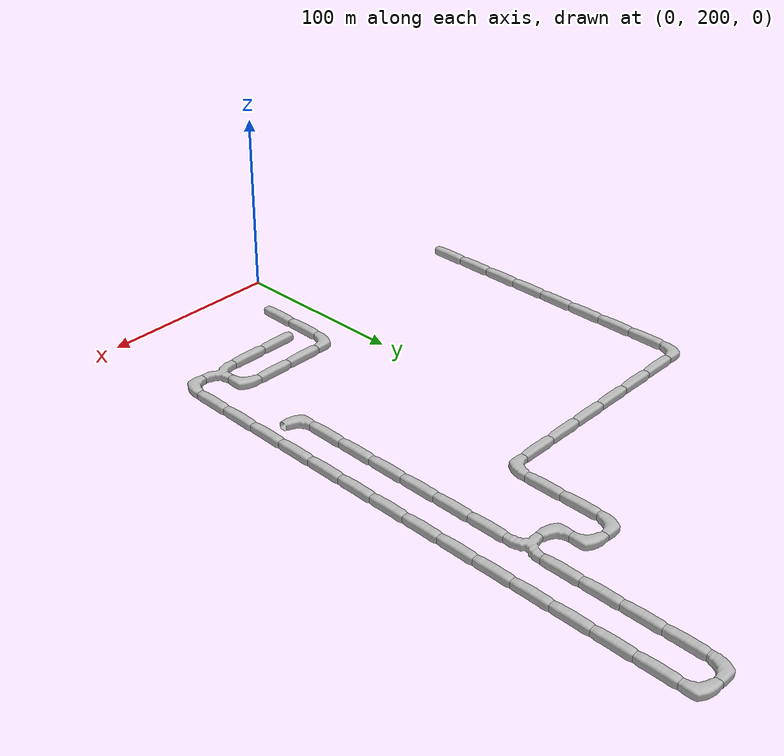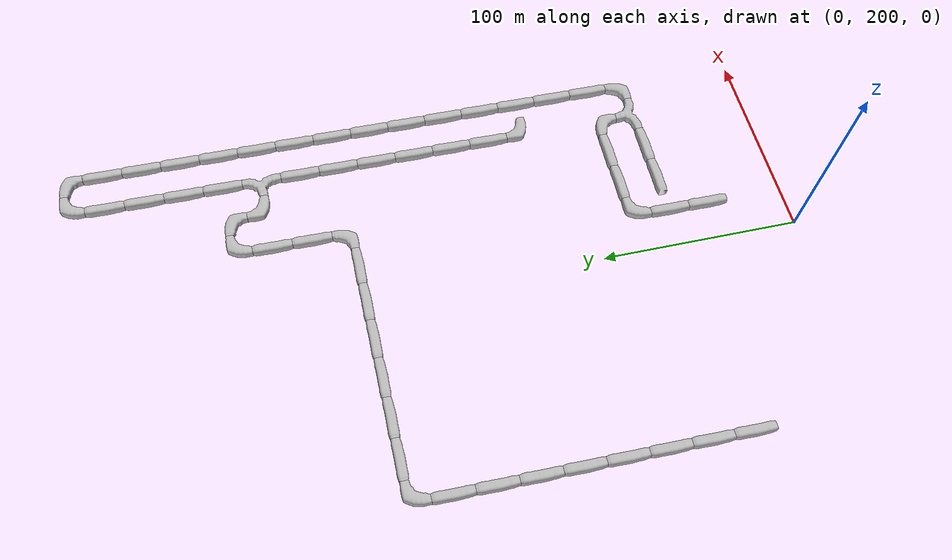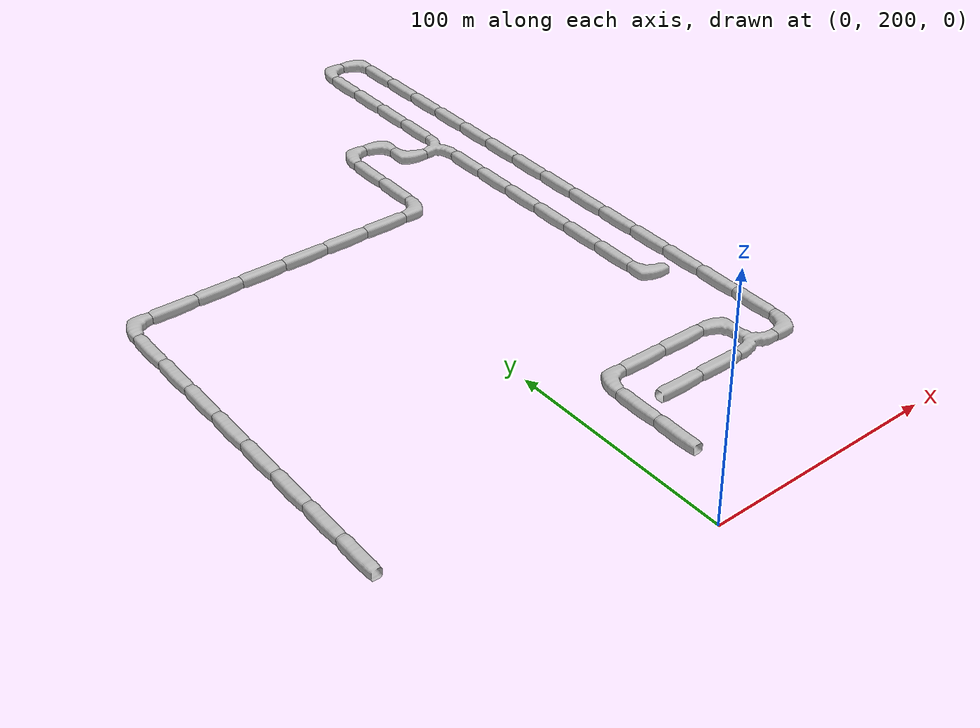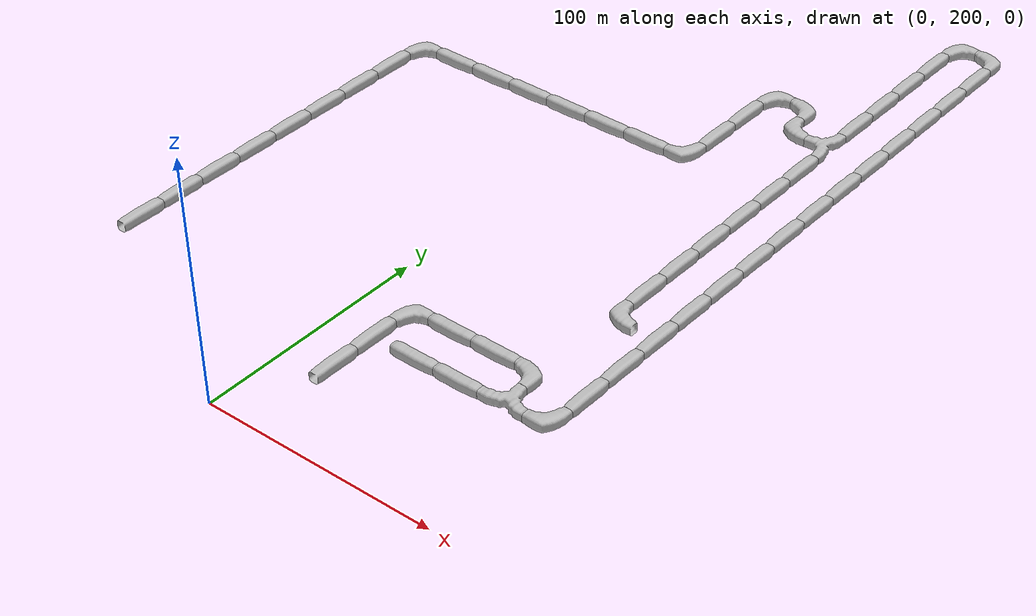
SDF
<sdf version="1.6">
 <world name="cave_32000_32">
  <include>
   <static>true</static>
   <name>cave_1_12</name>
   <pose>20 240 0 0 0 0.0</pose>
   <uri>model://cave_straight_20m</uri>
  </include>
  <include>
   <static>true</static>
   <name>cave_1_13</name>
   <pose>20 260 0 0 0 0.0</pose>
   <uri>model://cave_straight_20m</uri>
  </include>
  <include>
   <static>true</static>
   <name>cave_1_14</name>
   <pose>20 280 0 0 0 -1.5707963267948966</pose>
   <uri>model://cave_L_20m</uri>
  </include>
  <include>
   <static>true</static>
   <name>cave_2_14</name>
   <pose>40 280 0 0 0 1.5707963267948966</pose>
   <uri>model://cave_straight_20m</uri>
  </include>
  <include>
   <static>true</static>
   <name>cave_3_14</name>
   <pose>60 280 0 0 0 1.5707963267948966</pose>
   <uri>model://cave_straight_20m</uri>
  </include>
  <include>
   <static>true</static>
   <name>cave_4_14</name>
   <pose>80 280 0 0 0 3.141592653589793</pose>
   <uri>model://cave_L_20m</uri>
  </include>
  <include>
   <static>true</static>
   <name>cave_4_13</name>
   <pose>80 260 0 0 0 0.0</pose>
   <uri>model://cave_3way_20m</uri>
  </include>
  <include>
   <static>true</static>
   <name>cave_5_13</name>
   <pose>100 260 0 0 0 1.5707963267948966</pose>
   <uri>model://cave_L_20m</uri>
  </include>
  <include>
   <static>true</static>
   <name>cave_5_14</name>
   <pose>100 280 0 0 0 0.0</pose>
   <uri>model://cave_straight_20m</uri>
  </include>
  <include>
   <static>true</static>
   <name>cave_5_15</name>
   <pose>100 300 0 0 0 0.0</pose>
   <uri>model://cave_straight_20m</uri>
  </include>
  <include>
   <static>true</static>
   <name>cave_5_16</name>
   <pose>100 320 0 0 0 0.0</pose>
   <uri>model://cave_straight_20m</uri>
  </include>
  <include>
   <static>true</static>
   <name>cave_5_17</name>
   <pose>100 340 0 0 0 0.0</pose>
   <uri>model://cave_straight_20m</uri>
  </include>
  <include>
   <static>true</static>
   <name>cave_5_18</name>
   <pose>100 360 0 0 0 0.0</pose>
   <uri>model://cave_straight_20m</uri>
  </include>
  <include>
   <static>true</static>
   <name>cave_5_19</name>
   <pose>100 380 0 0 0 0.0</pose>
   <uri>model://cave_straight_20m</uri>
  </include>
  <include>
   <static>true</static>
   <name>cave_5_20</name>
   <pose>100 400 0 0 0 0.0</pose>
   <uri>model://cave_straight_20m</uri>
  </include>
  <include>
   <static>true</static>
   <name>cave_5_21</name>
   <pose>100 420 0 0 0 0.0</pose>
   <uri>model://cave_straight_20m</uri>
  </include>
  <include>
   <static>true</static>
   <name>cave_5_22</name>
   <pose>100 440 0 0 0 0.0</pose>
   <uri>model://cave_straight_20m</uri>
  </include>
  <include>
   <static>true</static>
   <name>cave_5_23</name>
   <pose>100 460 0 0 0 0.0</pose>
   <uri>model://cave_straight_20m</uri>
  </include>
  <include>
   <static>true</static>
   <name>cave_5_24</name>
   <pose>100 480 0 0 0 0.0</pose>
   <uri>model://cave_straight_20m</uri>
  </include>
  <include>
   <static>true</static>
   <name>cave_5_25</name>
   <pose>100 500 0 0 0 0.0</pose>
   <uri>model://cave_straight_20m</uri>
  </include>
  <include>
   <static>true</static>
   <name>cave_5_26</name>
   <pose>100 520 0 0 0 0.0</pose>
   <uri>model://cave_straight_20m</uri>
  </include>
  <include>
   <static>true</static>
   <name>cave_5_27</name>
   <pose>100 540 0 0 0 0.0</pose>
   <uri>model://cave_straight_20m</uri>
  </include>
  <include>
   <static>true</static>
   <name>cave_5_28</name>
   <pose>100 560 0 0 0 3.141592653589793</pose>
   <uri>model://cave_L_20m</uri>
  </include>
  <include>
   <static>true</static>
   <name>cave_4_28</name>
   <pose>80 560 0 0 0 -1.5707963267948966</pose>
   <uri>model://cave_L_20m</uri>
  </include>
  <include>
   <static>true</static>
   <name>cave_4_27</name>
   <pose>80 540 0 0 0 0.0</pose>
   <uri>model://cave_straight_20m</uri>
  </include>
  <include>
   <static>true</static>
   <name>cave_4_26</name>
   <pose>80 520 0 0 0 0.0</pose>
   <uri>model://cave_straight_20m</uri>
  </include>
  <include>
   <static>true</static>
   <name>cave_4_25</name>
   <pose>80 500 0 0 0 0.0</pose>
   <uri>model://cave_straight_20m</uri>
  </include>
  <include>
   <static>true</static>
   <name>cave_4_24</name>
   <pose>80 480 0 0 0 0.0</pose>
   <uri>model://cave_straight_20m</uri>
  </include>
  <include>
   <static>true</static>
   <name>cave_4_23</name>
   <pose>80 460 0 0 0 1.5707963267948966</pose>
   <uri>model://cave_3way_20m</uri>
  </include>
  <include>
   <static>true</static>
   <name>cave_4_22</name>
   <pose>80 440 0 0 0 0.0</pose>
   <uri>model://cave_straight_20m</uri>
  </include>
  <include>
   <static>true</static>
   <name>cave_4_21</name>
   <pose>80 420 0 0 0 0.0</pose>
   <uri>model://cave_straight_20m</uri>
  </include>
  <include>
   <static>true</static>
   <name>cave_4_20</name>
   <pose>80 400 0 0 0 0.0</pose>
   <uri>model://cave_straight_20m</uri>
  </include>
  <include>
   <static>true</static>
   <name>cave_4_19</name>
   <pose>80 380 0 0 0 0.0</pose>
   <uri>model://cave_straight_20m</uri>
  </include>
  <include>
   <static>true</static>
   <name>cave_4_18</name>
   <pose>80 360 0 0 0 0.0</pose>
   <uri>model://cave_straight_20m</uri>
  </include>
  <include>
   <static>true</static>
   <name>cave_4_17</name>
   <pose>80 340 0 0 0 0.0</pose>
   <uri>model://cave_straight_20m</uri>
  </include>
  <include>
   <static>true</static>
   <name>cave_4_16</name>
   <pose>80 320 0 0 0 0.0</pose>
   <uri>model://cave_L_20m</uri>
  </include>
  <include>
   <static>true</static>
   <name>cave_3_23</name>
   <pose>60 460 0 0 0 0.0</pose>
   <uri>model://cave_L_20m</uri>
  </include>
  <include>
   <static>true</static>
   <name>cave_3_24</name>
   <pose>60 480 0 0 0 3.141592653589793</pose>
   <uri>model://cave_L_20m</uri>
  </include>
  <include>
   <static>true</static>
   <name>cave_2_24</name>
   <pose>40 480 0 0 0 -1.5707963267948966</pose>
   <uri>model://cave_L_20m</uri>
  </include>
  <include>
   <static>true</static>
   <name>cave_2_23</name>
   <pose>40 460 0 0 0 0.0</pose>
   <uri>model://cave_straight_20m</uri>
  </include>
  <include>
   <static>true</static>
   <name>cave_2_22</name>
   <pose>40 440 0 0 0 0.0</pose>
   <uri>model://cave_straight_20m</uri>
  </include>
  <include>
   <static>true</static>
   <name>cave_2_21</name>
   <pose>40 420 0 0 0 1.5707963267948966</pose>
   <uri>model://cave_L_20m</uri>
  </include>
  <include>
   <static>true</static>
   <name>cave_1_21</name>
   <pose>20 420 0 0 0 1.5707963267948966</pose>
   <uri>model://cave_straight_20m</uri>
  </include>
  <include>
   <static>true</static>
   <name>cave_0_21</name>
   <pose>0 420 0 0 0 1.5707963267948966</pose>
   <uri>model://cave_straight_20m</uri>
  </include>
  <include>
   <static>true</static>
   <name>cave_-1_21</name>
   <pose>-20 420 0 0 0 1.5707963267948966</pose>
   <uri>model://cave_straight_20m</uri>
  </include>
  <include>
   <static>true</static>
   <name>cave_-2_21</name>
   <pose>-40 420 0 0 0 1.5707963267948966</pose>
   <uri>model://cave_straight_20m</uri>
  </include>
  <include>
   <static>true</static>
   <name>cave_-3_21</name>
   <pose>-60 420 0 0 0 1.5707963267948966</pose>
   <uri>model://cave_straight_20m</uri>
  </include>
  <include>
   <static>true</static>
   <name>cave_-4_21</name>
   <pose>-80 420 0 0 0 1.5707963267948966</pose>
   <uri>model://cave_straight_20m</uri>
  </include>
  <include>
   <static>true</static>
   <name>cave_-5_21</name>
   <pose>-100 420 0 0 0 -1.5707963267948966</pose>
   <uri>model://cave_L_20m</uri>
  </include>
  <include>
   <static>true</static>
   <name>cave_-5_20</name>
   <pose>-100 400 0 0 0 0.0</pose>
   <uri>model://cave_straight_20m</uri>
  </include>
  <include>
   <static>true</static>
   <name>cave_-5_19</name>
   <pose>-100 380 0 0 0 0.0</pose>
   <uri>model://cave_straight_20m</uri>
  </include>
  <include>
   <static>true</static>
   <name>cave_-5_18</name>
   <pose>-100 360 0 0 0 0.0</pose>
   <uri>model://cave_straight_20m</uri>
  </include>
  <include>
   <static>true</static>
   <name>cave_-5_17</name>
   <pose>-100 340 0 0 0 0.0</pose>
   <uri>model://cave_straight_20m</uri>
  </include>
  <include>
   <static>true</static>
   <name>cave_-5_16</name>
   <pose>-100 320 0 0 0 0.0</pose>
   <uri>model://cave_straight_20m</uri>
  </include>
  <include>
   <static>true</static>
   <name>cave_-5_15</name>
   <pose>-100 300 0 0 0 0.0</pose>
   <uri>model://cave_straight_20m</uri>
  </include>
  <include>
   <static>true</static>
   <name>cave_-5_14</name>
   <pose>-100 280 0 0 0 0.0</pose>
   <uri>model://cave_straight_20m</uri>
  </include>
  <include>
   <static>true</static>
   <name>cave_-5_13</name>
   <pose>-100 260 0 0 0 0.0</pose>
   <uri>model://cave_straight_20m</uri>
  </include>
  <include>
   <static>true</static>
   <name>cave_3_13</name>
   <pose>60 260 0 0 0 1.5707963267948966</pose>
   <uri>model://cave_straight_20m</uri>
  </include>
  <include>
   <static>true</static>
   <name>cave_2_13</name>
   <pose>40 260 0 0 0 1.5707963267948966</pose>
   <uri>model://cave_straight_20m</uri>
  </include>
 </world>
</sdf>
